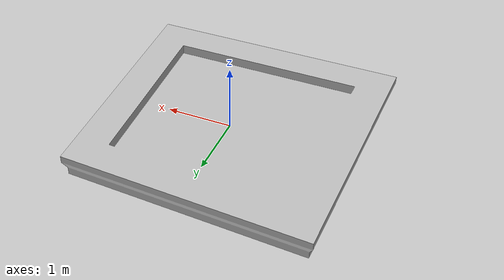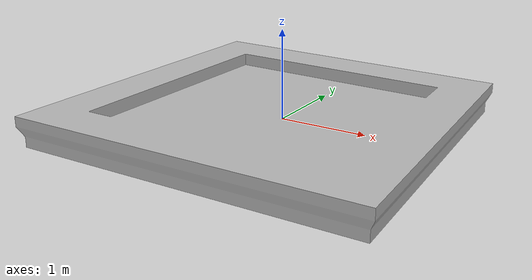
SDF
<?xml version='1.0'?>
<sdf version="1.4">
  <model name="park_sandpit">
    <static>true</static>
    <link name="link">
      <collision name="collision">
        <geometry>
          <mesh>
            <uri>model://park_sandpit/meshes/collision.dae</uri>
          </mesh>
        </geometry>
      </collision>
      <visual name="visual">
        <geometry>
          <mesh>
            <uri>model://park_sandpit/meshes/park_sandpit.dae</uri>
          </mesh>
        </geometry>
      </visual>
    </link>
  </model>
</sdf>
